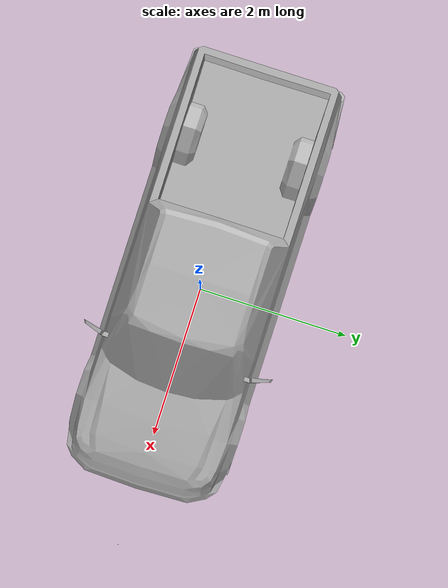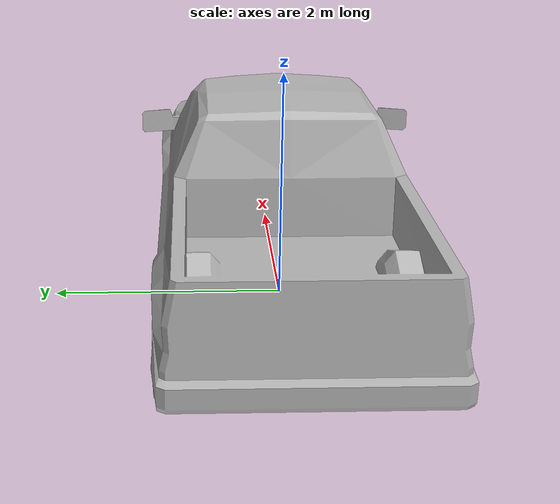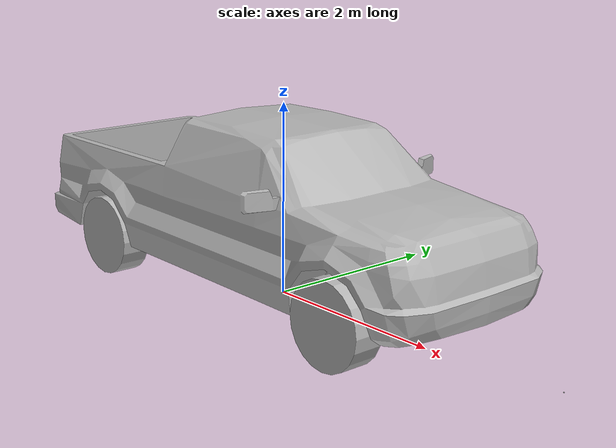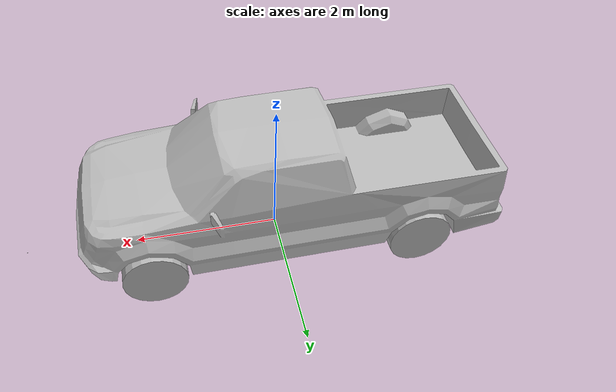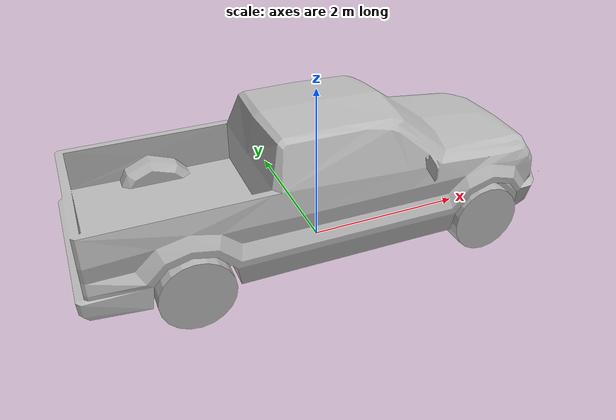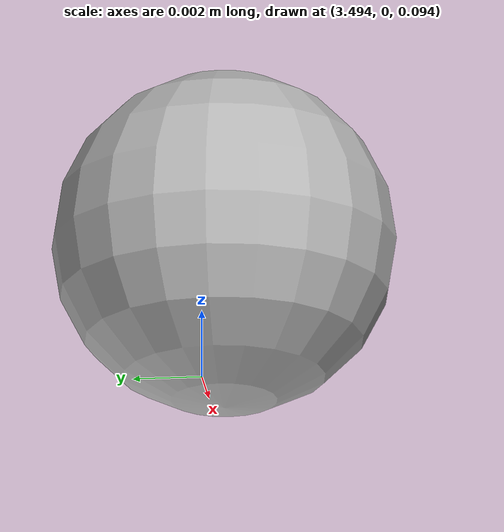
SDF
<?xml version="1.0" ?>
<sdf version="1.6">
  <model name="pickup">
    <static>false</static>
    <link name="pickup_camera">

      <inertial>
        <mass>10</mass>
        <inertia>
          <ixx>1</ixx>
          <ixy>0.0</ixy>
          <iyy>1</iyy>
          <ixz>0.0</ixz>
          <iyz>0.0</iyz>
          <izz>1.0</izz>
        </inertia>
      </inertial>

      <collision name="collision">
        <pose>0 0 0 0 0 -1.57079632679</pose>
        <geometry>
          <mesh>
            <uri>model://pickup/meshes/pickup.dae</uri>
          </mesh>
        </geometry>
      </collision>
      <visual name="visual">
        <pose>0 0 0 0 0 -1.57079632679</pose>
        <geometry>
          <mesh>
            <uri>model://pickup/meshes/pickup.dae</uri>
          </mesh>
        </geometry>
      </visual>
    </link>

    <link name='pickup_camera_front'>
      <pose>3.500 0.00000 0.1000000 0.000000 -0.000000 0.0000000</pose>
      <inertial>
        <mass>2</mass>
        <inertia>
          <ixx>1.000000</ixx>
          <ixy>0.000000</ixy>
          <ixz>0.000000</ixz>
          <iyy>1.000000</iyy>
          <iyz>0.000000</iyz>
          <izz>1.000000</izz>
        </inertia>
      </inertial>
      <sensor name='pickup_cam_front' type='camera'>
        <pose>3.500 0.00000 0.1000000 0.000000 -0.000000 0.0000000</pose>
        <update_rate>20.000000</update_rate>
        <camera name='cfront'>
          <horizontal_fov>1.570000</horizontal_fov>
          <image>
            <width>640</width>
            <height>480</height>
            <format>R8G8B8</format>
          </image>
          <clip>
            <near>0.100000</near>
            <far>15.000000</far>
          </clip>
        </camera>
        <plugin name="pickup_camera_controller_front" filename="libgazebo_ros_camera.so">
          <alwaysOn>true</alwaysOn>
          <updateRate>0.0</updateRate>
          <cameraName>F1ROS/cameraL</cameraName>
          <imageTopicName>image_raw</imageTopicName>
          <cameraInfoTopicName>camera_info</cameraInfoTopicName>
          <frameName>camera_front</frameName>
          <hackBaseline>0.07</hackBaseline>
          <distortionK1>0.0</distortionK1>
          <distortionK2>0.0</distortionK2>
          <distortionK3>0.0</distortionK3>
          <distortionT1>0.0</distortionT1>
          <distortionT2>0.0</distortionT2>
        </plugin>
      </sensor>
      <visual name='visual'>
        <geometry>
          <sphere>
            <radius>.005</radius>
          </sphere>
        </geometry>
      </visual>
      <collision name='collision'>
        <geometry>
          <box>
            <size>0.100000 0.100000 0.100000</size>
          </box>
        </geometry>
        <surface>
          <friction>
            <ode>
              <mu>100000.000000</mu>
              <mu2>100000.000000</mu2>
              <slip1>0.000000</slip1>
              <slip2>0.000000</slip2>
            </ode>
          </friction>
        </surface>
        <max_contacts>10</max_contacts>
      </collision>
      <velocity_decay>
        <linear>0.000000</linear>
        <angular>0.000000</angular>
      </velocity_decay>
      <self_collide>0</self_collide>
      <kinematic>0</kinematic>
      <gravity>1</gravity>
    </link>

  </model>
</sdf>
